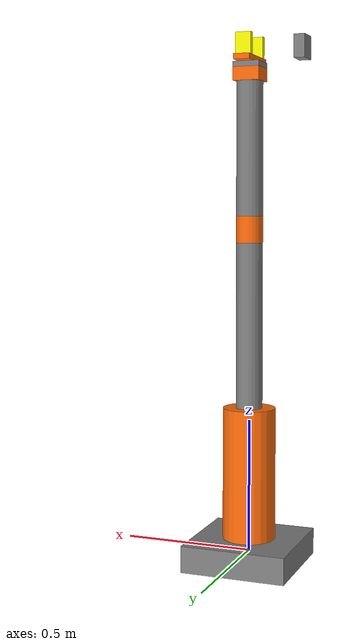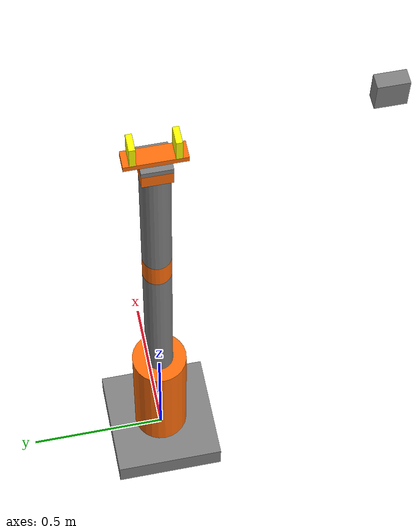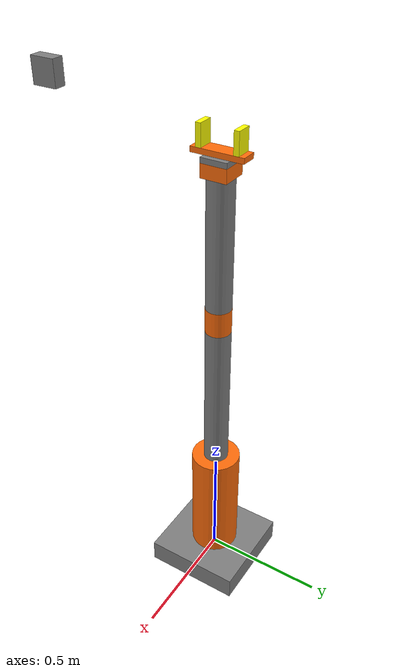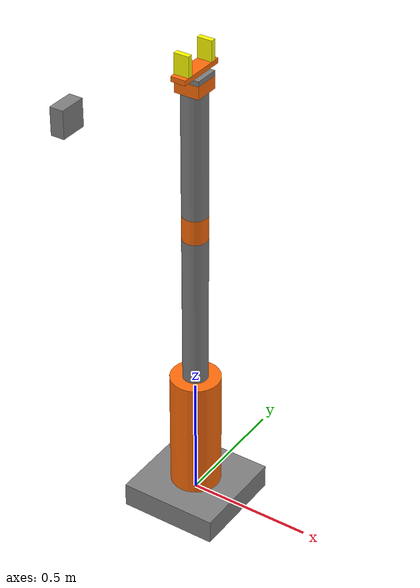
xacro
<?xml version="1.0"?>
<robot xmlns:xacro="http://www.ros.org/wiki/xacro" name="robotic_arm">
    <xacro:arg name="initial_positions_file" default="initial_positions.yaml" />

    <!-- Import robotic_arm urdf file -->
    <xacro:include filename="$(find robotic_arm_description)/urdf/arm.urdf.xacro" />

    <!-- Import control_xacro -->
    <xacro:include filename="robotic_arm.ros2_control.xacro" />

    <xacro:robotic_arm_ros2_control name="FakeSystem" initial_positions_file="$(arg initial_positions_file)"/>

</robot>

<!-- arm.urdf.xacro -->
<robot name="robotic_arm" xmlns:xacro="http://www.ros.org/wiki/xacro">

    <xacro:include filename="common_properties.xacro"/>
    <xacro:include filename="arm.xacro"/>
    <xacro:include filename="gripper.xacro"/>
    <xacro:include filename="robotic_arm.ros2_control.xacro" />
    <xacro:include filename="camera.xacro" />
    <!-- for gazebo-->
     <gazebo>
        <plugin filename="gz_ros2_control-system" name="gz_ros2_control::GazeboSimROS2ControlPlugin">
            <!-- Διαδρομή προς το αρχείο των controllers σου -->
            <parameters>$(find robotic_arm_bringup)/config/ros2_controllers.yaml</parameters>
        </plugin>
    </gazebo>

    <!-- joint gripper with hand-->

    <joint name="tool_gripper" type="fixed">
        <parent link="tool_link"/>
        <child link="gripper_base_link"/>
        <origin xyz="0 0 0" rpy="0 0 0"/>
    </joint>

    <!-- joint with camera-->
     <joint name="base_camera_joint" type="fixed">
        <parent link="base_link"/>
        <child link="camera_link"/>
        <origin xyz="0.0 -0.7 2.0" rpy="0 1.57 0"/>
     </joint>

</robot>

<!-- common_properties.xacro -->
<robot xmlns:xacro="http://www.ros.org/wiki/xacro">
    <!-- COLORS-->
    <material name="blue">
        <color rgba="0 0 0.5 1" />
    </material>

    <material name="grey">
        <color rgba="0.5 0.5 0.5 1" />
    </material>

    <material name="light_blue">
        <color rgba="0 0 0.2 1" />
    </material>

    <material name="orange">
        <color rgba="${255/255} ${108/255} ${10/255} 1.0" />
    </material>

    <material name="yellow">
        <color rgba="1 1 0 1" />
    </material>

    <material name="dark_green">
        <color rgba="0 0.4 0 1"/>
    </material>

    <material name="light_green">
        <color rgba="0 0.6 0 1"/>
    </material>
    <!---======================DIEMENSTIONS========================-->

    <!-- ROBOTIC BASE -->
    <xacro:property name="arm_base_length" value="0.4"/>
    <xacro:property name="arm_base_width" value="0.4"/>
    <xacro:property name="arm_base_height" value="0.1"/>

    <!-- SHOULDER LINK -->
    <xacro:property name="shoulder_radius" value="0.1"/>
    <xacro:property name="shoulder_length" value="0.5"/>

    <!---======================INERTIA========================-->

    <xacro:macro name="box_inertia" params=" m x y z o_xyz o_rpy">
        <inertial>
            <mass value="${m}"/>
            <origin xyz="${o_xyz}" rpy="${o_rpy}" />
            <inertia ixx="${(m/12) * (y*y + z*z)}"  ixy="0" ixz="0"
                     iyy="${(m/12) * (x*x + z*z)}"  iyz="0"
                     izz="${(m/12) * (y*y + x*x)}"/>
        </inertial>
    </xacro:macro>

    <xacro:macro name="cylinder_inertia" params="m r length o_xyz o_rpy">
        <inertial>
            <mass value="${m}"/>
            <origin xyz="${o_xyz}" rpy="${o_rpy}"/>
            <inertia ixx="${(m/12) * (3*(r*r) + (length*length))}"  ixy="0" ixz="0"
                    iyy="${(m/12) * (3*(r*r) + (length*length))}"  iyz="0"
                    izz="${(1/2) * m * (r*r)}"/>
        </inertial>

    </xacro:macro>
</robot>

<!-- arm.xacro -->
<robot xmlns:xacro="http://www.ros.org/wiki/xacro">

    <!-- =============================links=================================-->
    <link name="base_link">
        <visual>
            <geometry>
                <box size="${arm_base_length} ${arm_base_width} ${arm_base_height}" />
            </geometry>
            <origin xyz="0 0 0" rpy="0 0 0"/>
            <material name="grey"/>
        </visual>
        <collision>
            <geometry>
                <box size="${arm_base_length} ${arm_base_width} ${arm_base_height}" />
            </geometry>
            <origin xyz="0 0 0" rpy="0 0 0"/>
        </collision>
        <xacro:box_inertia m="5.0" x="${arm_base_length}" y="${arm_base_width}" z="${arm_base_height}"
                            o_xyz="0 0 0" o_rpy="0 0 0"/>
    </link>

    <link name="shoulder_link" >
        <visual>
            <geometry>
                <cylinder length="${shoulder_length}" radius="${shoulder_radius}"/>
            </geometry>
            <origin xyz="0 0 ${shoulder_length/2}" rpy="0 0 0" />
            <material name="orange"/>
        </visual>
        <collision>
            <geometry>
                <box size="${shoulder_radius*2} ${shoulder_radius*2} ${shoulder_length}" />
            </geometry>
            <origin xyz="0 0 ${shoulder_length/2}" rpy="0 0 0"/>
        </collision>
        <xacro:cylinder_inertia m="0.5" r="${shoulder_radius}" length="${shoulder_length}"
                                o_xyz="0 0 ${shoulder_length/2}" o_rpy="0 0 0"/>
    </link>

    <link name="arm_link">
        <visual>
            <geometry>
                <cylinder length="${shoulder_length/0.8}" radius="${shoulder_radius/2}"/>
            </geometry>
            <origin xyz="0 0 ${(shoulder_length/0.8)/2}" rpy="0 0 0" />
            <material name="grey"/>
        </visual>
        <collision>
            <geometry>
                <box size="${shoulder_radius} ${shoulder_radius} ${shoulder_length/0.8}" />
            </geometry>
            <origin xyz="0 0 ${(shoulder_length/0.8)/2}" rpy="0 0 0"/>
        </collision>
        <xacro:cylinder_inertia m="0.3" r="${shoulder_radius/2}" length="${shoulder_length/0.8}"
                                o_xyz="0 0 ${(shoulder_length/0.8)/2}" o_rpy="0 0 0"/>
    </link>

    <link name="elbow_link">
        <visual>
            <geometry>
                <cylinder length="${shoulder_length/5}" radius="${shoulder_radius/2}"/>
            </geometry>
            <origin xyz="0 0 ${(shoulder_length/5)/2}" rpy="0 0 0" />
            <material name="orange"/>
        </visual>
        <collision>
            <geometry>
                <box size="${shoulder_radius} ${shoulder_radius} ${shoulder_length/5}" />
            </geometry>
            <origin xyz="0 0 ${(shoulder_length/5)/2}" rpy="0 0 0"/>
        </collision>
        <xacro:cylinder_inertia m="0.3" r="${shoulder_radius/2}" length="${shoulder_length/5}"
                                o_xyz="0 0 ${(shoulder_length/5)/2}" o_rpy="0 0 0"/>
    </link>

    <link name="forearm_link">
        <visual>
            <geometry>
                <cylinder length="${shoulder_length}" radius="${shoulder_radius/2}"/>
            </geometry>
            <origin xyz="0 0 ${(shoulder_length)/2}" rpy="0 0 0" />
            <material name="grey"/>
        </visual>
        <collision>
            <geometry>
                <box size="${shoulder_radius} ${shoulder_radius} ${shoulder_length}" />
            </geometry>
            <origin xyz="0 0 ${shoulder_length/2}" rpy="0 0 0"/>
        </collision>
        <xacro:cylinder_inertia m="0.3" r="${shoulder_radius/2}" length="${shoulder_length}"
                                o_xyz="0 0 ${shoulder_length/2}" o_rpy="0 0 0"/>
    </link>

    <link name="wrist_link">
        <visual>
            <geometry>
                <box size="${shoulder_radius} ${shoulder_radius} ${shoulder_length/10}" />
            </geometry>
            <origin xyz="0 0 ${shoulder_length/20}" rpy="0 0 0"/>
            <material name="orange"/>
        </visual>
        <collision>
            <geometry>
                <box size="${shoulder_radius } ${shoulder_radius } ${shoulder_length/10}" />
            </geometry>
            <origin xyz="0 0 ${shoulder_length/20}" rpy="0 0 0"/>
        </collision>
        <xacro:box_inertia m="0.1" x="${shoulder_radius}" y="${shoulder_radius}" z="${shoulder_length/10}"
                           o_xyz="0 0 ${shoulder_length/20}" o_rpy="0 0 0"/>
    </link>

    <link name="hand_link">
        <visual>
            <geometry>
                <box size="${shoulder_radius} ${shoulder_radius} ${shoulder_length/25}" />
            </geometry>
            <origin xyz="0 0 ${shoulder_length/50}" rpy="0 0 0"/>
            <material name="grey"/>
        </visual>
        <collision>
            <geometry>
                <box size="${shoulder_radius } ${shoulder_radius } ${shoulder_length/25}" />
            </geometry>
            <origin xyz="0 0 ${shoulder_length/50}" rpy="0 0 0"/>
        </collision>
        <xacro:box_inertia m="0.1" x="${shoulder_radius}" y="${shoulder_radius}" z="${shoulder_length/25}"
                   o_xyz="0 0 ${shoulder_length/50}" o_rpy="0 0 0"/>
    </link>

    <link name="tool_link"/>

<!-- =============================Joints=================================-->

    <joint name="base_shoulder_joint" type="revolute">
        <parent link="base_link"/>
        <child link="shoulder_link"/>
        <origin xyz="0 0 ${arm_base_height/2}" rpy="0 0 ${3*pi/2}"/>
        <axis xyz="0 0 1"/>
        <limit effort="1000.0" velocity="1.0" lower="${-pi}" upper="${pi}"/>
    </joint>

    <joint name="shoulder_arm_joint" type="revolute">
        <parent link="shoulder_link"/>
        <child link="arm_link"/>
        <origin xyz="0 0 ${shoulder_length}" rpy="0 0 0"/>
        <axis xyz="0 1 0"/>
        <limit effort="1000.0" velocity="1.0" lower="-0.2" upper="2.5"/>
    </joint>

    <joint name="arm_elbow_joint" type="revolute">
        <parent link="arm_link"/>
        <child link="elbow_link"/>
        <origin xyz="0 0 ${shoulder_length/0.8}" rpy="0 0 0"/>
        <axis xyz="0 1 0"/>
        <limit effort="1000.0" velocity="1.0" lower="-0.2" upper="2.5"/>
    </joint>

    <joint name="elbow_forearm_joint" type="revolute">
        <parent link="elbow_link"/>
        <child link="forearm_link"/>
        <origin xyz="0 0 ${shoulder_length/5}" rpy="0 0 0"/>
        <axis xyz="0 0 1"/>
        <limit effort="1000.0" velocity="1.0" lower="${-pi}" upper="${pi}"/>
    </joint>

    <joint name="forearm_wrist_joint" type="revolute">
        <parent link="forearm_link"/>
        <child link="wrist_link"/>
        <origin xyz="0 0 ${shoulder_length}" rpy="0 0 0"/>
        <axis xyz="0 1 0"/>
        <limit effort="1000.0" velocity="1.0" lower="${-pi/2}" upper="${pi/2}"/>
    </joint>

    <joint name="wrist_hand_joint" type="revolute">
        <parent link="wrist_link"/>
        <child link="hand_link"/>
        <origin xyz="0 0 ${shoulder_length/10}" rpy="0 0 0"/>
        <axis xyz="0 0 1"/>
        <limit lower="-3.14" upper="3.14" effort="100" velocity="3.14"/>
    </joint>

    <joint name="hand_tool_joint" type="fixed">
        <parent link="hand_link"/>
        <child link="tool_link"/>
        <origin xyz="0 0 ${shoulder_length/25}" rpy="0 0 0"/>
    </joint>

</robot>

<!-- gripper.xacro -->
<robot xmlns:xacro="http://www.ros.org/wiki/xacro">

    <!-- =============================links=================================-->

    <link name="gripper_base_link">
        <visual>
            <geometry>
                <box size="0.2 0.06 0.02"/>
            </geometry>
            <origin xyz="0 0 0.01" rpy="0 0 0"/>
            <material name="orange"/>
        </visual>
        <collision>
            <geometry>
                <box size="0.2 0.06 0.02"/>
            </geometry>
            <origin xyz="0 0 0.01" rpy="0 0 0"/>
        </collision>
        <xacro:box_inertia m="0.05" x="0.2" y="0.06" z="0.02"
                           o_xyz="0 0 0.01" o_rpy="0 0 0"/>
    </link>

    <link name="gripper_left_finger_link">
        <visual>
            <geometry>
                <box size="0.02 0.06 0.08"/>
            </geometry>
            <origin xyz="0 0 0.04" rpy="0 0 0"/>
            <material name="yellow"/>
        </visual>
        <collision>
            <geometry>
                <box size="0.02 0.06 0.08"/>
            </geometry>
            <origin xyz="0 0 0.04" rpy="0 0 0"/>
        </collision>
        <xacro:box_inertia m="0.03" x="0.02" y="0.06" z="0.08"
                           o_xyz="0 0 0.04" o_rpy="0 0 0"/>
    </link>

    <link name="gripper_right_finger_link">
        <visual>
            <geometry>
                <box size="0.02 0.06 0.08"/>
            </geometry>
            <origin xyz="0 0 0.04" rpy="0 0 0"/>
            <material name="yellow"/>
        </visual>
        <collision>
            <geometry>
                <box size="0.02 0.06 0.08"/>
            </geometry>
            <origin xyz="0 0 0.04" rpy="0 0 0"/>
        </collision>
        <xacro:box_inertia m="0.03" x="0.02" y="0.06" z="0.08"
                           o_xyz="0 0 0.04" o_rpy="0 0 0"/>
    </link>

    <!-- =============================Joints=================================-->

    <joint name="gripper_left_finger_joint" type="prismatic">
        <parent link="gripper_base_link"/>
        <child link="gripper_left_finger_link"/>
        <origin xyz="-0.07 0 0.02" rpy="0 0 0"/>
        <axis xyz="1 0 0"/>
        <limit effort="1000.0" velocity="0.5" lower="0.0" upper="0.06"/>
        <dynamics damping="50.0" friction="1.0"/>
    </joint>

    <joint name="gripper_right_finger_joint" type="prismatic">
        <parent link="gripper_base_link"/>
        <child link="gripper_right_finger_link"/>
        <origin xyz="0.07 0 0.02" rpy="0 0 0"/>
        <axis xyz="1 0 0"/>
        <!-- Αφαιρέθηκε το mimic tag -->
        <limit effort="1000.0" velocity="0.5" lower="-0.06" upper="0.0"/>
        <dynamics damping="50.0" friction="1.0"/>
    </joint>

</robot>

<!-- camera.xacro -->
<robot xmlns:xacro="http://www.ros.org/wiki/xacro">
    <link name="camera_link">
        <visual>
            <geometry>
                <box size="0.1 0.1 0.05"/>
            </geometry>
            <origin xyz="0 0 0" rpy="0 0 0"/>
            <material name="grey"/>
        </visual>
        <collision>
            <geometry>
                <box size="0.1 0.1 0.05"/>
            </geometry>
            <origin xyz="0 0 0" rpy="0 0 0"/>
        </collision>
        <xacro:box_inertia m="0.1" x="0.1" y="0.1" z="0.05"
                           o_xyz="0 0 0" o_rpy="0 0 0"/>
    </link>

    <link name="virtual_camera"/>

    <joint name="camera_link_optical" type="fixed" >
        <parent link="camera_link"/>
        <child link="virtual_camera"/>
        <origin xyz="0 0 0" rpy="${-pi/2} 0 ${-pi/2}"/>
    </joint>

    <gazebo reference="camera_link">
        <sensor name="camera" type="camera">
            <camera>
                <horizontal_fov>1.3962634</horizontal_fov>
                <image>
                    <width>640</width>
                    <height>480</height>
                    <format>R8G8B8</format>
                </image>
                <clip>
                    <near>0.1</near>
                    <far>15</far>
                </clip>
                <noise>
                    <type>gaussian</type>
                    <mean>0.0</mean>
                    <stddev>0.007</stddev>
                </noise>
                <optical_frame_id>virtual_camera</optical_frame_id>
                <camera_info_topic>camera/camera_info</camera_info_topic>
            </camera>
            <always_on>1</always_on>
            <update_rate>20</update_rate>
            <visualize>true</visualize>
            <topic>camera/image_raw</topic>
        </sensor>
    </gazebo>

</robot>
